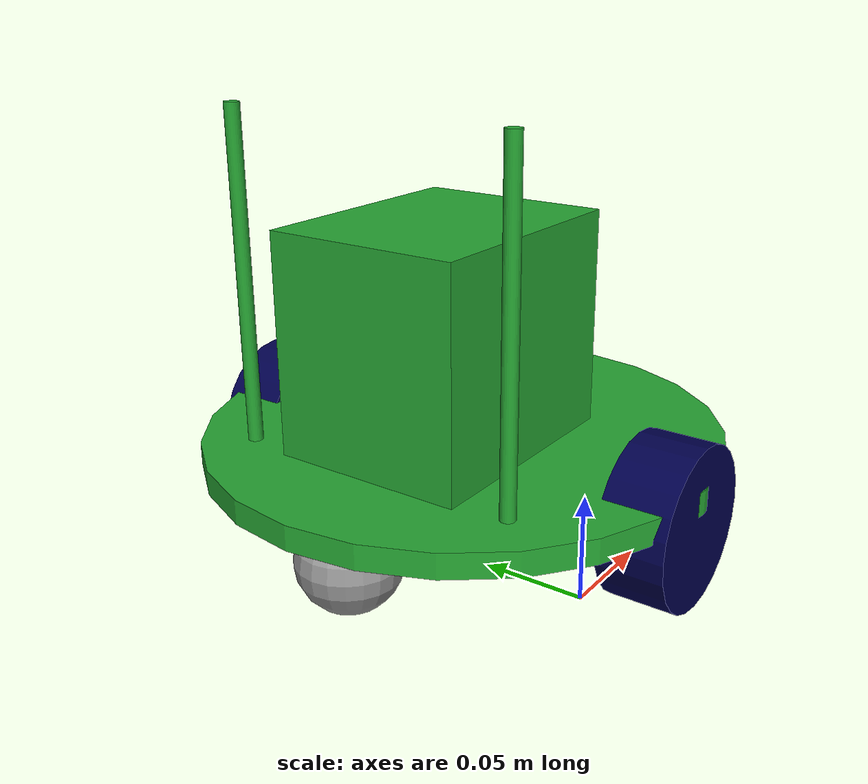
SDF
<?xml version='1.0'?>
<sdf version='1.7'>
  <model name='Jetbot_v1'>
    <link name='chassis'>
      <inertial>
        <mass>2.8943</mass>
        <inertia>
          <ixx>0.00825037</ixx>
          <ixy>0</ixy>
          <ixz>0</ixz>
          <iyy>0.00825037</iyy>
          <iyz>0</iyz>
          <izz>0.0164525</izz>
        </inertia>
        <pose>0 0 0 0 -0 0</pose>
      </inertial>
      <pose>-0.034201 0.039625 0.082041 0 -0 0</pose>
      <gravity>1</gravity>
      <self_collide>0</self_collide>
      <kinematic>0</kinematic>
      <enable_wind>0</enable_wind>
      <visual name='ModelPreview_4::chassis::visual_1'>
        <pose>-0.015 0 0.049 0 -0 0</pose>
        <geometry>
          <box>
            <size>0.1 0.08 0.08935</size>
          </box>
        </geometry>
        <material>
          <lighting>1</lighting>
          <script>
            <uri>file://media/materials/scripts/gazebo.material</uri>
            <name>Gazebo/Green</name>
          </script>
          <shader type='pixel'>
            <normal_map>__default__</normal_map>
          </shader>
          <ambient>0 0 0 1</ambient>
          <diffuse>0.7 0.7 0.7 1</diffuse>
          <specular>0.01 0.01 0.01 1</specular>
          <emissive>0 0 0 1</emissive>
        </material>
        <transparency>0</transparency>
        <cast_shadows>1</cast_shadows>
      </visual>
      <visual name='ModelPreview_7::chassis::visual_3'>
        <pose>-0.06 -0.06 0.069 0 -0 0</pose>
        <geometry>
          <cylinder>
            <radius>0.003</radius>
            <length>0.13639</length>
          </cylinder>
        </geometry>
        <material>
          <lighting>1</lighting>
          <script>
            <uri>file://media/materials/scripts/gazebo.material</uri>
            <name>Gazebo/Green</name>
          </script>
          <shader type='pixel'>
            <normal_map>__default__</normal_map>
          </shader>
          <ambient>0 0 0 1</ambient>
          <diffuse>0.7 0.7 0.7 1</diffuse>
          <specular>0.01 0.01 0.01 1</specular>
          <emissive>0 0 0 1</emissive>
        </material>
        <transparency>0</transparency>
        <cast_shadows>1</cast_shadows>
      </visual>
      <visual name='visual'>
        <pose>0 0 0 0 -0 0</pose>
        <geometry>
          <cylinder>
            <radius>0.106625</radius>
            <length>0.01</length>
          </cylinder>
        </geometry>
        <material>
          <lighting>1</lighting>
          <script>
            <uri>file://media/materials/scripts/gazebo.material</uri>
            <name>Gazebo/Green</name>
          </script>
          <shader type='pixel'>
            <normal_map>__default__</normal_map>
          </shader>
          <ambient>0 0.3 0 1</ambient>
          <diffuse>0.7 0.7 0.7 1</diffuse>
          <specular>0.01 0.01 0.01 1</specular>
          <emissive>0 0 0 1</emissive>
        </material>
        <transparency>0</transparency>
        <cast_shadows>1</cast_shadows>
      </visual>
      <visual name='ModelPreview_7::chassis::visual_2'>
        <pose>-0.06 0.06 0.069 0 -0 0</pose>
        <geometry>
          <cylinder>
            <radius>0.003</radius>
            <length>0.13639</length>
          </cylinder>
        </geometry>
        <material>
          <lighting>1</lighting>
          <script>
            <uri>file://media/materials/scripts/gazebo.material</uri>
            <name>Gazebo/Green</name>
          </script>
          <shader type='pixel'>
            <normal_map>__default__</normal_map>
          </shader>
          <ambient>0 0 0 1</ambient>
          <diffuse>0.7 0.7 0.7 1</diffuse>
          <specular>0.01 0.01 0.01 1</specular>
          <emissive>0 0 0 1</emissive>
        </material>
        <transparency>0</transparency>
        <cast_shadows>1</cast_shadows>
      </visual>
      <collision name='collision_1'>
        <laser_retro>0</laser_retro>
        <max_contacts>10</max_contacts>
        <pose>-0.015 0 0.049 0 -0 0</pose>
        <geometry>
          <box>
            <size>0.1 0.08 0.08935</size>
          </box>
        </geometry>
        <surface>
          <friction>
            <ode>
              <mu>1</mu>
              <mu2>1</mu2>
              <fdir1>0 0 0</fdir1>
              <slip1>0</slip1>
              <slip2>0</slip2>
            </ode>
            <torsional>
              <coefficient>1</coefficient>
              <patch_radius>0</patch_radius>
              <surface_radius>0</surface_radius>
              <use_patch_radius>1</use_patch_radius>
              <ode>
                <slip>0</slip>
              </ode>
            </torsional>
          </friction>
          <bounce>
            <restitution_coefficient>0</restitution_coefficient>
            <threshold>1e+06</threshold>
          </bounce>
          <contact>
            <collide_without_contact>0</collide_without_contact>
            <collide_without_contact_bitmask>1</collide_without_contact_bitmask>
            <collide_bitmask>1</collide_bitmask>
            <ode>
              <soft_cfm>0</soft_cfm>
              <soft_erp>0.2</soft_erp>
              <kp>1e+13</kp>
              <kd>1</kd>
              <max_vel>0.01</max_vel>
              <min_depth>0</min_depth>
            </ode>
            <bullet>
              <split_impulse>1</split_impulse>
              <split_impulse_penetration_threshold>-0.01</split_impulse_penetration_threshold>
              <soft_cfm>0</soft_cfm>
              <soft_erp>0.2</soft_erp>
              <kp>1e+13</kp>
              <kd>1</kd>
            </bullet>
          </contact>
        </surface>
      </collision>
      <collision name='collision'>
        <laser_retro>0</laser_retro>
        <max_contacts>10</max_contacts>
        <pose>0 0 0 0 -0 0</pose>
        <geometry>
          <cylinder>
            <radius>0.106625</radius>
            <length>0.01</length>
          </cylinder>
        </geometry>
        <surface>
          <friction>
            <ode>
              <mu>1</mu>
              <mu2>1</mu2>
              <fdir1>0 0 0</fdir1>
              <slip1>0</slip1>
              <slip2>0</slip2>
            </ode>
            <torsional>
              <coefficient>1</coefficient>
              <patch_radius>0</patch_radius>
              <surface_radius>0</surface_radius>
              <use_patch_radius>1</use_patch_radius>
              <ode>
                <slip>0</slip>
              </ode>
            </torsional>
          </friction>
          <bounce>
            <restitution_coefficient>0</restitution_coefficient>
            <threshold>1e+06</threshold>
          </bounce>
          <contact>
            <collide_without_contact>0</collide_without_contact>
            <collide_without_contact_bitmask>1</collide_without_contact_bitmask>
            <collide_bitmask>1</collide_bitmask>
            <ode>
              <soft_cfm>0</soft_cfm>
              <soft_erp>0.2</soft_erp>
              <kp>1e+13</kp>
              <kd>1</kd>
              <max_vel>0.01</max_vel>
              <min_depth>0</min_depth>
            </ode>
            <bullet>
              <split_impulse>1</split_impulse>
              <split_impulse_penetration_threshold>-0.01</split_impulse_penetration_threshold>
              <soft_cfm>0</soft_cfm>
              <soft_erp>0.2</soft_erp>
              <kp>1e+13</kp>
              <kd>1</kd>
            </bullet>
          </contact>
        </surface>
      </collision>
    </link>
    <link name='ballFront'>
      <inertial>
        <mass>0.21</mass>
        <inertia>
          <ixx>4.253e-05</ixx>
          <ixy>0</ixy>
          <ixz>0</ixz>
          <iyy>4.253e-05</iyy>
          <iyz>0</iyz>
          <izz>4.253e-05</izz>
        </inertia>
        <pose>0 0 0 0 -0 0</pose>
      </inertial>
      <pose>0.039924 0.039625 0.059152 0 -0 0</pose>
      <gravity>1</gravity>
      <self_collide>0</self_collide>
      <kinematic>0</kinematic>
      <enable_wind>0</enable_wind>
      <visual name='visual'>
        <pose>0 0 0 0 -0 0</pose>
        <geometry>
          <sphere>
            <radius>0.021</radius>
          </sphere>
        </geometry>
        <material>
          <lighting>1</lighting>
          <script>
            <uri>file://media/materials/scripts/gazebo.material</uri>
            <name>Gazebo/Grey</name>
          </script>
          <shader type='pixel'>
            <normal_map>__default__</normal_map>
          </shader>
          <ambient>0.3 0.3 0.3 1</ambient>
          <diffuse>0.7 0.7 0.7 1</diffuse>
          <specular>0.01 0.01 0.01 1</specular>
          <emissive>0 0 0 1</emissive>
        </material>
        <transparency>0</transparency>
        <cast_shadows>1</cast_shadows>
      </visual>
      <collision name='collision'>
        <laser_retro>0</laser_retro>
        <max_contacts>10</max_contacts>
        <pose>0 0 0 0 -0 0</pose>
        <geometry>
          <sphere>
            <radius>0.021</radius>
          </sphere>
        </geometry>
        <surface>
          <friction>
            <ode>
              <mu>1</mu>
              <mu2>1</mu2>
              <fdir1>0 0 0</fdir1>
              <slip1>0</slip1>
              <slip2>0</slip2>
            </ode>
            <torsional>
              <coefficient>1</coefficient>
              <patch_radius>0</patch_radius>
              <surface_radius>0</surface_radius>
              <use_patch_radius>1</use_patch_radius>
              <ode>
                <slip>0</slip>
              </ode>
            </torsional>
          </friction>
          <bounce>
            <restitution_coefficient>0</restitution_coefficient>
            <threshold>1e+06</threshold>
          </bounce>
          <contact>
            <collide_without_contact>0</collide_without_contact>
            <collide_without_contact_bitmask>1</collide_without_contact_bitmask>
            <collide_bitmask>1</collide_bitmask>
            <ode>
              <soft_cfm>0</soft_cfm>
              <soft_erp>0.2</soft_erp>
              <kp>1e+13</kp>
              <kd>1</kd>
              <max_vel>0.01</max_vel>
              <min_depth>0</min_depth>
            </ode>
            <bullet>
              <split_impulse>1</split_impulse>
              <split_impulse_penetration_threshold>-0.01</split_impulse_penetration_threshold>
              <soft_cfm>0</soft_cfm>
              <soft_erp>0.2</soft_erp>
              <kp>1e+13</kp>
              <kd>1</kd>
            </bullet>
          </contact>
        </surface>
      </collision>
    </link>
    <link name='ballRear'>
      <inertial>
        <mass>0.21</mass>
        <inertia>
          <ixx>4.066e-05</ixx>
          <ixy>0</ixy>
          <ixz>0</ixz>
          <iyy>4.066e-05</iyy>
          <iyz>0</iyz>
          <izz>4.066e-05</izz>
        </inertia>
        <pose>0 0 0 0 -0 0</pose>
      </inertial>
      <pose>-0.108326 0.039625 0.059152 0 -0 0</pose>
      <gravity>1</gravity>
      <self_collide>0</self_collide>
      <kinematic>0</kinematic>
      <enable_wind>0</enable_wind>
      <visual name='visual'>
        <pose>0 0 0 0 -0 0</pose>
        <geometry>
          <sphere>
            <radius>0.021</radius>
          </sphere>
        </geometry>
        <material>
          <lighting>1</lighting>
          <script>
            <uri>file://media/materials/scripts/gazebo.material</uri>
            <name>Gazebo/Grey</name>
          </script>
          <shader type='pixel'>
            <normal_map>__default__</normal_map>
          </shader>
          <ambient>0.3 0.3 0.3 1</ambient>
          <diffuse>0.7 0.7 0.7 1</diffuse>
          <specular>0.01 0.01 0.01 1</specular>
          <emissive>0 0 0 1</emissive>
        </material>
        <transparency>0</transparency>
        <cast_shadows>1</cast_shadows>
      </visual>
      <collision name='collision'>
        <laser_retro>0</laser_retro>
        <max_contacts>10</max_contacts>
        <pose>0 0 0 0 -0 0</pose>
        <geometry>
          <sphere>
            <radius>0.021</radius>
          </sphere>
        </geometry>
        <surface>
          <friction>
            <ode>
              <mu>1</mu>
              <mu2>1</mu2>
              <fdir1>0 0 0</fdir1>
              <slip1>0</slip1>
              <slip2>0</slip2>
            </ode>
            <torsional>
              <coefficient>1</coefficient>
              <patch_radius>0</patch_radius>
              <surface_radius>0</surface_radius>
              <use_patch_radius>1</use_patch_radius>
              <ode>
                <slip>0</slip>
              </ode>
            </torsional>
          </friction>
          <bounce>
            <restitution_coefficient>0</restitution_coefficient>
            <threshold>1e+06</threshold>
          </bounce>
          <contact>
            <collide_without_contact>0</collide_without_contact>
            <collide_without_contact_bitmask>1</collide_without_contact_bitmask>
            <collide_bitmask>1</collide_bitmask>
            <ode>
              <soft_cfm>0</soft_cfm>
              <soft_erp>0.2</soft_erp>
              <kp>1e+13</kp>
              <kd>1</kd>
              <max_vel>0.01</max_vel>
              <min_depth>0</min_depth>
            </ode>
            <bullet>
              <split_impulse>1</split_impulse>
              <split_impulse_penetration_threshold>-0.01</split_impulse_penetration_threshold>
              <soft_cfm>0</soft_cfm>
              <soft_erp>0.2</soft_erp>
              <kp>1e+13</kp>
              <kd>1</kd>
            </bullet>
          </contact>
        </surface>
      </collision>
    </link>
    <link name='wheelLeft'>
      <inertial>
        <mass>0.031</mass>
        <inertia>
          <ixx>1.007e-05</ixx>
          <ixy>0</ixy>
          <ixz>0</ixz>
          <iyy>1.007e-05</iyy>
          <iyz>0</iyz>
          <izz>1.637e-05</izz>
        </inertia>
        <pose>0 0 0 0 -0 0</pose>
      </inertial>
      <pose>-0.034201 0.132747 0.070652 1.5707 -0 0</pose>
      <gravity>1</gravity>
      <self_collide>0</self_collide>
      <kinematic>0</kinematic>
      <enable_wind>0</enable_wind>
      <visual name='visual'>
        <pose>0 0 0 0 -0 0</pose>
        <geometry>
          <cylinder>
            <radius>0.0325</radius>
            <length>0.027</length>
          </cylinder>
        </geometry>
        <material>
          <lighting>1</lighting>
          <script>
            <uri>file://media/materials/scripts/gazebo.material</uri>
            <name>Gazebo/Grey</name>
          </script>
          <shader type='pixel'>
            <normal_map>__default__</normal_map>
          </shader>
          <ambient>0 0 0.3 1</ambient>
          <diffuse>0.7 0.7 0.7 1</diffuse>
          <specular>0.01 0.01 0.01 1</specular>
          <emissive>0 0 0 1</emissive>
        </material>
        <transparency>0</transparency>
        <cast_shadows>1</cast_shadows>
      </visual>
      <collision name='collision'>
        <laser_retro>0</laser_retro>
        <max_contacts>10</max_contacts>
        <pose>0 0 0 0 -0 0</pose>
        <geometry>
          <cylinder>
            <radius>0.0325</radius>
            <length>0.027</length>
          </cylinder>
        </geometry>
        <surface>
          <friction>
            <ode>
              <mu>1</mu>
              <mu2>1</mu2>
              <fdir1>0 0 0</fdir1>
              <slip1>0</slip1>
              <slip2>0</slip2>
            </ode>
            <torsional>
              <coefficient>1</coefficient>
              <patch_radius>0</patch_radius>
              <surface_radius>0</surface_radius>
              <use_patch_radius>1</use_patch_radius>
              <ode>
                <slip>0</slip>
              </ode>
            </torsional>
          </friction>
          <bounce>
            <restitution_coefficient>0</restitution_coefficient>
            <threshold>1e+06</threshold>
          </bounce>
          <contact>
            <collide_without_contact>0</collide_without_contact>
            <collide_without_contact_bitmask>1</collide_without_contact_bitmask>
            <collide_bitmask>1</collide_bitmask>
            <ode>
              <soft_cfm>0</soft_cfm>
              <soft_erp>0.2</soft_erp>
              <kp>1e+13</kp>
              <kd>1</kd>
              <max_vel>0.01</max_vel>
              <min_depth>0</min_depth>
            </ode>
            <bullet>
              <split_impulse>1</split_impulse>
              <split_impulse_penetration_threshold>-0.01</split_impulse_penetration_threshold>
              <soft_cfm>0</soft_cfm>
              <soft_erp>0.2</soft_erp>
              <kp>1e+13</kp>
              <kd>1</kd>
            </bullet>
          </contact>
        </surface>
      </collision>
    </link>
    <link name='wheelRight'>
      <inertial>
        <mass>0.031</mass>
        <inertia>
          <ixx>1.007e-05</ixx>
          <ixy>0</ixy>
          <ixz>0</ixz>
          <iyy>1.007e-05</iyy>
          <iyz>0</iyz>
          <izz>1.637e-05</izz>
        </inertia>
        <pose>0 0 0 0 -0 0</pose>
      </inertial>
      <pose>-0.034201 -0.052997 0.070652 1.5707 -0 0</pose>
      <gravity>1</gravity>
      <self_collide>0</self_collide>
      <kinematic>0</kinematic>
      <enable_wind>0</enable_wind>
      <visual name='visual'>
        <pose>0 0 0 0 -0 0</pose>
        <geometry>
          <cylinder>
            <radius>0.0325</radius>
            <length>0.027</length>
          </cylinder>
        </geometry>
        <material>
          <lighting>1</lighting>
          <script>
            <uri>file://media/materials/scripts/gazebo.material</uri>
            <name>Gazebo/Grey</name>
          </script>
          <shader type='pixel'>
            <normal_map>__default__</normal_map>
          </shader>
          <ambient>0 0 0.3 1</ambient>
          <diffuse>0.7 0.7 0.7 1</diffuse>
          <specular>0.01 0.01 0.01 1</specular>
          <emissive>0 0 0 1</emissive>
        </material>
        <transparency>0</transparency>
        <cast_shadows>1</cast_shadows>
      </visual>
      <collision name='collision'>
        <laser_retro>0</laser_retro>
        <max_contacts>10</max_contacts>
        <pose>0 0 0 0 -0 0</pose>
        <geometry>
          <cylinder>
            <radius>0.0325</radius>
            <length>0.027</length>
          </cylinder>
        </geometry>
        <surface>
          <friction>
            <ode>
              <mu>1</mu>
              <mu2>1</mu2>
              <fdir1>0 0 0</fdir1>
              <slip1>0</slip1>
              <slip2>0</slip2>
            </ode>
            <torsional>
              <coefficient>1</coefficient>
              <patch_radius>0</patch_radius>
              <surface_radius>0</surface_radius>
              <use_patch_radius>1</use_patch_radius>
              <ode>
                <slip>0</slip>
              </ode>
            </torsional>
          </friction>
          <bounce>
            <restitution_coefficient>0</restitution_coefficient>
            <threshold>1e+06</threshold>
          </bounce>
          <contact>
            <collide_without_contact>0</collide_without_contact>
            <collide_without_contact_bitmask>1</collide_without_contact_bitmask>
            <collide_bitmask>1</collide_bitmask>
            <ode>
              <soft_cfm>0</soft_cfm>
              <soft_erp>0.2</soft_erp>
              <kp>1e+13</kp>
              <kd>1</kd>
              <max_vel>0.01</max_vel>
              <min_depth>0</min_depth>
            </ode>
            <bullet>
              <split_impulse>1</split_impulse>
              <split_impulse_penetration_threshold>-0.01</split_impulse_penetration_threshold>
              <soft_cfm>0</soft_cfm>
              <soft_erp>0.2</soft_erp>
              <kp>1e+13</kp>
              <kd>1</kd>
            </bullet>
          </contact>
        </surface>
      </collision>
    </link>
    <joint name='chassis_JOINT_ballFront' type='ball'>
      <parent>chassis</parent>
      <child>ballFront</child>
      <pose>0 0 0 0 -0 0</pose>
      <physics>
        <ode>
          <limit>
            <cfm>0</cfm>
            <erp>0.2</erp>
          </limit>
          <suspension>
            <cfm>0</cfm>
            <erp>0.2</erp>
          </suspension>
        </ode>
      </physics>
    </joint>
    <joint name='chassis_JOINT_ballRear' type='ball'>
      <parent>chassis</parent>
      <child>ballRear</child>
      <pose>0 0 0 0 -0 0</pose>
      <physics>
        <ode>
          <limit>
            <cfm>0</cfm>
            <erp>0.2</erp>
          </limit>
          <suspension>
            <cfm>0</cfm>
            <erp>0.2</erp>
          </suspension>
        </ode>
      </physics>
    </joint>
    <joint name='chassis_JOINT_wheelLeft' type='revolute'>
      <parent>chassis</parent>
      <child>wheelLeft</child>
      <pose>0 0 0 0 -0 0</pose>
      <axis>
        <xyz>0 0 1</xyz>
        <limit>
          <lower>-1.79769e+308</lower>
          <upper>1.79769e+308</upper>
          <effort>-1</effort>
          <velocity>-1</velocity>
        </limit>
        <dynamics>
          <spring_reference>0</spring_reference>
          <spring_stiffness>0</spring_stiffness>
          <damping>0</damping>
          <friction>0</friction>
        </dynamics>
      </axis>
      <physics>
        <ode>
          <limit>
            <cfm>0</cfm>
            <erp>0.2</erp>
          </limit>
          <suspension>
            <cfm>0</cfm>
            <erp>0.2</erp>
          </suspension>
        </ode>
      </physics>
    </joint>
    <joint name='chassis_JOINT_wheelRight' type='revolute'>
      <parent>chassis</parent>
      <child>wheelRight</child>
      <pose>0 0 0 0 -0 0</pose>
      <axis>
        <xyz>0 0 1</xyz>
        <limit>
          <lower>-1.79769e+308</lower>
          <upper>1.79769e+308</upper>
          <effort>-1</effort>
          <velocity>-1</velocity>
        </limit>
        <dynamics>
          <spring_reference>0</spring_reference>
          <spring_stiffness>0</spring_stiffness>
          <damping>0</damping>
          <friction>0</friction>
        </dynamics>
      </axis>
      <physics>
        <ode>
          <limit>
            <cfm>0</cfm>
            <erp>0.2</erp>
          </limit>
          <suspension>
            <cfm>0</cfm>
            <erp>0.2</erp>
          </suspension>
        </ode>
      </physics>
    </joint>
    <static>0</static>
    <allow_auto_disable>1</allow_auto_disable>
  </model>
</sdf>
